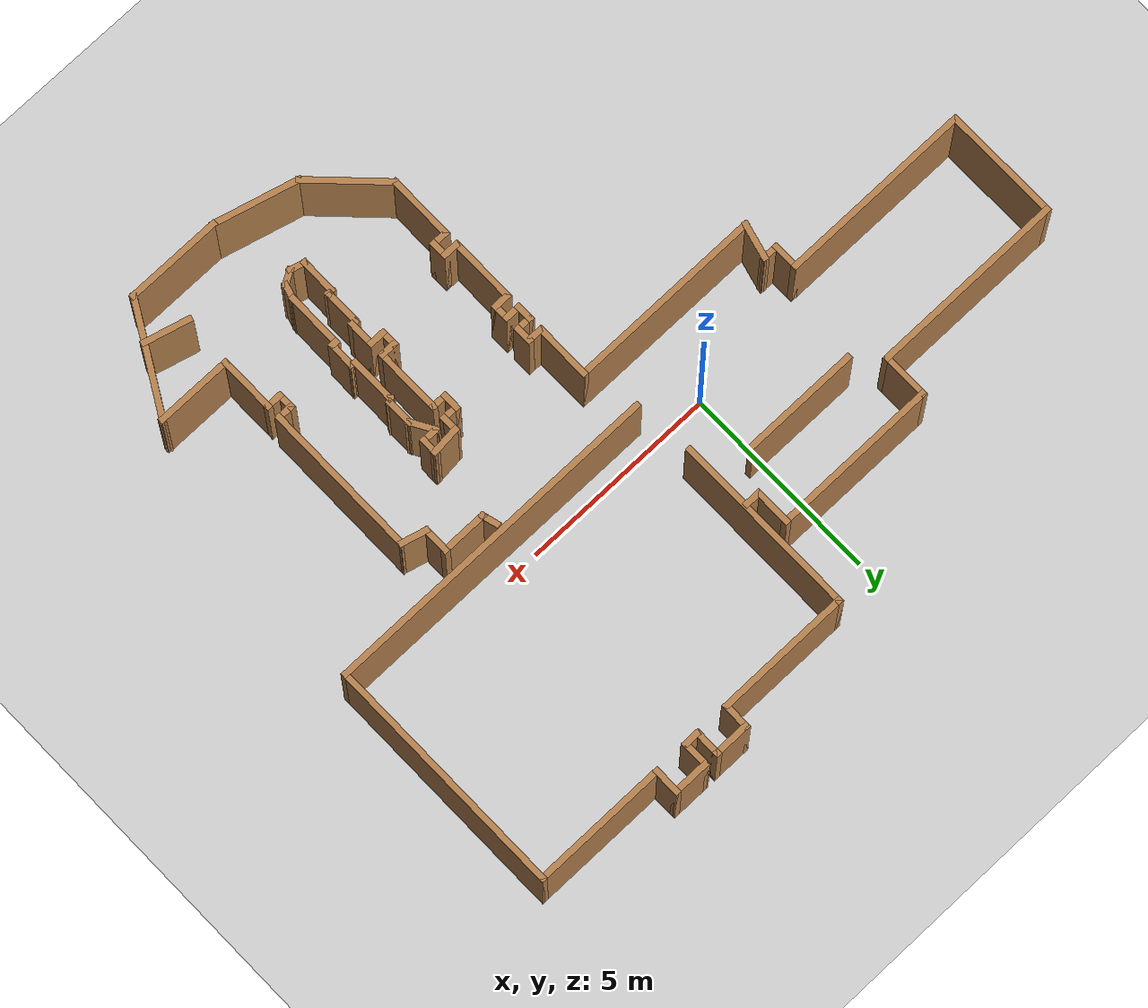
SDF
<sdf version="1.6">
 <world name="default">
  <model name="ground_plane">
   <static>1</static>
   <link name="link">
    <collision name="collision">
     <geometry><plane><normal>0 0 1</normal><size>100 100</size></plane></geometry>
     <surface><friction><ode><mu>100</mu><mu2>50</mu2></ode></friction></surface>
    </collision>
    <visual name="visual">
     <cast_shadows>0</cast_shadows>
     <geometry><plane><normal>0 0 1</normal><size>100 100</size></plane></geometry>
     <material>
      <script><uri>file://media/materials/scripts/gazebo.material</uri><name>Gazebo/Grey</name></script>
     </material>
    </visual>
   </link>
  </model>
  <model name="Robita1_1">
   <pose>1.06807 -1.7719 0 0 -0 0</pose>
   <link name="Wall_104">
    <collision name="Wall_104_Collision">
     <geometry><box><size>0.5 0.15 2.5</size></box></geometry>
     <pose>0 0 1.25 0 -0 0</pose>
    </collision>
    <visual name="Wall_104_Visual">
     <pose>0 0 1.25 0 -0 0</pose>
     <geometry><box><size>0.5 0.15 2.5</size></box></geometry>
     <material>
      <script><uri>file://media/materials/scripts/gazebo.material</uri><name>Gazebo/Wood</name></script>
      <ambient>1 1 1 1</ambient>
     </material>
    </visual>
    <pose>3.64941 -1.1749 0 0 0 -1.5708</pose>
   </link>
   <link name="Wall_105">
    <collision name="Wall_105_Collision">
     <geometry><box><size>0.5 0.15 2.5</size></box></geometry>
     <pose>0 0 1.25 0 -0 0</pose>
    </collision>
    <visual name="Wall_105_Visual">
     <pose>0 0 1.25 0 -0 0</pose>
     <geometry><box><size>0.5 0.15 2.5</size></box></geometry>
     <material>
      <script><uri>file://media/materials/scripts/gazebo.material</uri><name>Gazebo/Wood</name></script>
      <ambient>1 1 1 1</ambient>
     </material>
    </visual>
    <pose>3.47441 -1.3499 0 0 -0 3.14159</pose>
   </link>
   <link name="Wall_106">
    <collision name="Wall_106_Collision">
     <geometry><box><size>0.5 0.15 2.5</size></box></geometry>
     <pose>0 0 1.25 0 -0 0</pose>
    </collision>
    <visual name="Wall_106_Visual">
     <pose>0 0 1.25 0 -0 0</pose>
     <geometry><box><size>0.5 0.15 2.5</size></box></geometry>
     <material>
      <script><uri>file://media/materials/scripts/gazebo.material</uri><name>Gazebo/Wood</name></script>
      <ambient>1 1 1 1</ambient>
     </material>
    </visual>
    <pose>3.29941 -1.5249 0 0 0 -1.5708</pose>
   </link>
   <link name="Wall_107">
    <collision name="Wall_107_Collision">
     <geometry><box><size>0.5 0.15 2.5</size></box></geometry>
     <pose>0 0 1.25 0 -0 0</pose>
    </collision>
    <visual name="Wall_107_Visual">
     <pose>0 0 1.25 0 -0 0</pose>
     <geometry><box><size>0.5 0.15 2.5</size></box></geometry>
     <material>
      <script><uri>file://media/materials/scripts/gazebo.material</uri><name>Gazebo/Wood</name></script>
      <ambient>1 1 1 1</ambient>
     </material>
    </visual>
    <pose>3.47441 -1.6999 0 0 -0 0</pose>
   </link>
   <link name="Wall_108">
    <collision name="Wall_108_Collision">
     <geometry><box><size>1.75 0.15 2.5</size></box></geometry>
     <pose>0 0 1.25 0 -0 0</pose>
    </collision>
    <visual name="Wall_108_Visual">
     <pose>0 0 1.25 0 -0 0</pose>
     <geometry><box><size>1.75 0.15 2.5</size></box></geometry>
     <material>
      <script><uri>file://media/materials/scripts/gazebo.material</uri><name>Gazebo/Wood</name></script>
      <ambient>1 1 1 1</ambient>
     </material>
    </visual>
    <pose>3.64941 -2.4999 0 0 0 -1.5708</pose>
   </link>
   <link name="Wall_112">
    <collision name="Wall_112_Collision">
     <geometry><box><size>0.5 0.15 2.5</size></box></geometry>
     <pose>0 0 1.25 0 -0 0</pose>
    </collision>
    <visual name="Wall_112_Visual">
     <pose>0 0 1.25 0 -0 0</pose>
     <geometry><box><size>0.5 0.15 2.5</size></box></geometry>
     <material>
      <script><uri>file://media/materials/scripts/gazebo.material</uri><name>Gazebo/Wood</name></script>
      <ambient>1 1 1 1</ambient>
     </material>
    </visual>
    <pose>3.47441 -3.2999 0 0 -0 3.14159</pose>
   </link>
   <link name="Wall_113">
    <collision name="Wall_113_Collision">
     <geometry><box><size>0.5 0.15 2.5</size></box></geometry>
     <pose>0 0 1.25 0 -0 0</pose>
    </collision>
    <visual name="Wall_113_Visual">
     <pose>0 0 1.25 0 -0 0</pose>
     <geometry><box><size>0.5 0.15 2.5</size></box></geometry>
     <material>
      <script><uri>file://media/materials/scripts/gazebo.material</uri><name>Gazebo/Wood</name></script>
      <ambient>1 1 1 1</ambient>
     </material>
    </visual>
    <pose>3.29941 -3.4749 0 0 0 -1.5708</pose>
   </link>
   <link name="Wall_114">
    <collision name="Wall_114_Collision">
     <geometry><box><size>0.5 0.15 2.5</size></box></geometry>
     <pose>0 0 1.25 0 -0 0</pose>
    </collision>
    <visual name="Wall_114_Visual">
     <pose>0 0 1.25 0 -0 0</pose>
     <geometry><box><size>0.5 0.15 2.5</size></box></geometry>
     <material>
      <script><uri>file://media/materials/scripts/gazebo.material</uri><name>Gazebo/Wood</name></script>
      <ambient>1 1 1 1</ambient>
     </material>
    </visual>
    <pose>3.47441 -3.6499 0 0 -0 0</pose>
   </link>
   <link name="Wall_115">
    <collision name="Wall_115_Collision">
     <geometry><box><size>0.75 0.15 2.5</size></box></geometry>
     <pose>0 0 1.25 0 -0 0</pose>
    </collision>
    <visual name="Wall_115_Visual">
     <pose>0 0 1.25 0 -0 0</pose>
     <geometry><box><size>0.75 0.15 2.5</size></box></geometry>
     <material>
      <script><uri>file://media/materials/scripts/gazebo.material</uri><name>Gazebo/Wood</name></script>
      <ambient>1 1 1 1</ambient>
     </material>
    </visual>
    <pose>3.64941 -3.9499 0 0 0 -1.5708</pose>
   </link>
   <link name="Wall_116">
    <collision name="Wall_116_Collision">
     <geometry><box><size>0.25 0.15 2.5</size></box></geometry>
     <pose>0 0 1.25 0 -0 0</pose>
    </collision>
    <visual name="Wall_116_Visual">
     <pose>0 0 1.25 0 -0 0</pose>
     <geometry><box><size>0.25 0.15 2.5</size></box></geometry>
     <material>
      <script><uri>file://media/materials/scripts/gazebo.material</uri><name>Gazebo/Wood</name></script>
      <ambient>1 1 1 1</ambient>
     </material>
    </visual>
    <pose>3.59941 -4.2499 0 0 -0 3.14159</pose>
   </link>
   <link name="Wall_117">
    <collision name="Wall_117_Collision">
     <geometry><box><size>1 0.15 2.5</size></box></geometry>
     <pose>0 0 1.25 0 -0 0</pose>
    </collision>
    <visual name="Wall_117_Visual">
     <pose>0 0 1.25 0 -0 0</pose>
     <geometry><box><size>1 0.15 2.5</size></box></geometry>
     <material>
      <script><uri>file://media/materials/scripts/gazebo.material</uri><name>Gazebo/Wood</name></script>
      <ambient>1 1 1 1</ambient>
     </material>
    </visual>
    <pose>3.54941 -4.6749 0 0 0 -1.5708</pose>
   </link>
   <link name="Wall_118">
    <collision name="Wall_118_Collision">
     <geometry><box><size>0.25 0.15 2.5</size></box></geometry>
     <pose>0 0 1.25 0 -0 0</pose>
    </collision>
    <visual name="Wall_118_Visual">
     <pose>0 0 1.25 0 -0 0</pose>
     <geometry><box><size>0.25 0.15 2.5</size></box></geometry>
     <material>
      <script><uri>file://media/materials/scripts/gazebo.material</uri><name>Gazebo/Wood</name></script>
      <ambient>1 1 1 1</ambient>
     </material>
    </visual>
    <pose>3.50111 -5.11284 0 0 0 -2.87979</pose>
   </link>
   <link name="Wall_119">
    <collision name="Wall_119_Collision">
     <geometry><box><size>1 0.15 2.5</size></box></geometry>
     <pose>0 0 1.25 0 -0 0</pose>
    </collision>
    <visual name="Wall_119_Visual">
     <pose>0 0 1.25 0 -0 0</pose>
     <geometry><box><size>1 0.15 2.5</size></box></geometry>
     <material>
      <script><uri>file://media/materials/scripts/gazebo.material</uri><name>Gazebo/Wood</name></script>
      <ambient>1 1 1 1</ambient>
     </material>
    </visual>
    <pose>3.45282 -5.55078 0 0 0 -1.5708</pose>
   </link>
   <link name="Wall_121">
    <collision name="Wall_121_Collision">
     <geometry><box><size>0.5 0.15 2.5</size></box></geometry>
     <pose>0 0 1.25 0 -0 0</pose>
    </collision>
    <visual name="Wall_121_Visual">
     <pose>0 0 1.25 0 -0 0</pose>
     <geometry><box><size>0.5 0.15 2.5</size></box></geometry>
     <material>
      <script><uri>file://media/materials/scripts/gazebo.material</uri><name>Gazebo/Wood</name></script>
      <ambient>1 1 1 1</ambient>
     </material>
    </visual>
    <pose>3.62186 -6.02107 0 0 0 -0.261799</pose>
   </link>
   <link name="Wall_122">
    <collision name="Wall_122_Collision">
     <geometry><box><size>0.5 0.15 2.5</size></box></geometry>
     <pose>0 0 1.25 0 -0 0</pose>
    </collision>
    <visual name="Wall_122_Visual">
     <pose>0 0 1.25 0 -0 0</pose>
     <geometry><box><size>0.5 0.15 2.5</size></box></geometry>
     <material>
      <script><uri>file://media/materials/scripts/gazebo.material</uri><name>Gazebo/Wood</name></script>
      <ambient>1 1 1 1</ambient>
     </material>
    </visual>
    <pose>3.94245 -5.97887 0 0 -0 0.523599</pose>
   </link>
   <link name="Wall_123">
    <collision name="Wall_123_Collision">
     <geometry><box><size>0.5 0.15 2.5</size></box></geometry>
     <pose>0 0 1.25 0 -0 0</pose>
    </collision>
    <visual name="Wall_123_Visual">
     <pose>0 0 1.25 0 -0 0</pose>
     <geometry><box><size>0.5 0.15 2.5</size></box></geometry>
     <material>
      <script><uri>file://media/materials/scripts/gazebo.material</uri><name>Gazebo/Wood</name></script>
      <ambient>1 1 1 1</ambient>
     </material>
    </visual>
    <pose>4.13929 -5.72233 0 0 -0 1.309</pose>
   </link>
   <link name="Wall_126">
    <collision name="Wall_126_Collision">
     <geometry><box><size>1.5 0.15 2.5</size></box></geometry>
     <pose>0 0 1.25 0 -0 0</pose>
    </collision>
    <visual name="Wall_126_Visual">
     <pose>0 0 1.25 0 -0 0</pose>
     <geometry><box><size>1.5 0.15 2.5</size></box></geometry>
     <material>
      <script><uri>file://media/materials/scripts/gazebo.material</uri><name>Gazebo/Wood</name></script>
      <ambient>1 1 1 1</ambient>
     </material>
    </visual>
    <pose>4.18459 -4.87829 0 0 -0 1.5708</pose>
   </link>
   <link name="Wall_127">
    <collision name="Wall_127_Collision">
     <geometry><box><size>0.25 0.15 2.5</size></box></geometry>
     <pose>0 0 1.25 0 -0 0</pose>
    </collision>
    <visual name="Wall_127_Visual">
     <pose>0 0 1.25 0 -0 0</pose>
     <geometry><box><size>0.25 0.15 2.5</size></box></geometry>
     <material>
      <script><uri>file://media/materials/scripts/gazebo.material</uri><name>Gazebo/Wood</name></script>
      <ambient>1 1 1 1</ambient>
     </material>
    </visual>
    <pose>4.23459 -4.20329 0 0 -0 0</pose>
   </link>
   <link name="Wall_128">
    <collision name="Wall_128_Collision">
     <geometry><box><size>0.75 0.15 2.5</size></box></geometry>
     <pose>0 0 1.25 0 -0 0</pose>
    </collision>
    <visual name="Wall_128_Visual">
     <pose>0 0 1.25 0 -0 0</pose>
     <geometry><box><size>0.75 0.15 2.5</size></box></geometry>
     <material>
      <script><uri>file://media/materials/scripts/gazebo.material</uri><name>Gazebo/Wood</name></script>
      <ambient>1 1 1 1</ambient>
     </material>
    </visual>
    <pose>4.28459 -3.90329 0 0 -0 1.5708</pose>
   </link>
   <link name="Wall_129">
    <collision name="Wall_129_Collision">
     <geometry><box><size>0.25 0.15 2.5</size></box></geometry>
     <pose>0 0 1.25 0 -0 0</pose>
    </collision>
    <visual name="Wall_129_Visual">
     <pose>0 0 1.25 0 -0 0</pose>
     <geometry><box><size>0.25 0.15 2.5</size></box></geometry>
     <material>
      <script><uri>file://media/materials/scripts/gazebo.material</uri><name>Gazebo/Wood</name></script>
      <ambient>1 1 1 1</ambient>
     </material>
    </visual>
    <pose>4.23629 -3.59035 0 0 -0 2.87979</pose>
   </link>
   <link name="Wall_130">
    <collision name="Wall_130_Collision">
     <geometry><box><size>1.25 0.15 2.5</size></box></geometry>
     <pose>0 0 1.25 0 -0 0</pose>
    </collision>
    <visual name="Wall_130_Visual">
     <pose>0 0 1.25 0 -0 0</pose>
     <geometry><box><size>1.25 0.15 2.5</size></box></geometry>
     <material>
      <script><uri>file://media/materials/scripts/gazebo.material</uri><name>Gazebo/Wood</name></script>
      <ambient>1 1 1 1</ambient>
     </material>
    </visual>
    <pose>4.18799 -3.02741 0 0 -0 1.5708</pose>
   </link>
   <link name="Wall_131">
    <collision name="Wall_131_Collision">
     <geometry><box><size>0.25 0.15 2.5</size></box></geometry>
     <pose>0 0 1.25 0 -0 0</pose>
    </collision>
    <visual name="Wall_131_Visual">
     <pose>0 0 1.25 0 -0 0</pose>
     <geometry><box><size>0.25 0.15 2.5</size></box></geometry>
     <material>
      <script><uri>file://media/materials/scripts/gazebo.material</uri><name>Gazebo/Wood</name></script>
      <ambient>1 1 1 1</ambient>
     </material>
    </visual>
    <pose>4.22335 -2.44205 0 0 -0 0.785398</pose>
   </link>
   <link name="Wall_132">
    <collision name="Wall_132_Collision">
     <geometry><box><size>0.75 0.15 2.5</size></box></geometry>
     <pose>0 0 1.25 0 -0 0</pose>
    </collision>
    <visual name="Wall_132_Visual">
     <pose>0 0 1.25 0 -0 0</pose>
     <geometry><box><size>0.75 0.15 2.5</size></box></geometry>
     <material>
      <script><uri>file://media/materials/scripts/gazebo.material</uri><name>Gazebo/Wood</name></script>
      <ambient>1 1 1 1</ambient>
     </material>
    </visual>
    <pose>4.2587 -2.1067 0 0 -0 1.5708</pose>
   </link>
   <link name="Wall_135">
    <collision name="Wall_135_Collision">
     <geometry><box><size>0.75 0.15 2.5</size></box></geometry>
     <pose>0 0 1.25 0 -0 0</pose>
    </collision>
    <visual name="Wall_135_Visual">
     <pose>0 0 1.25 0 -0 0</pose>
     <geometry><box><size>0.75 0.15 2.5</size></box></geometry>
     <material>
      <script><uri>file://media/materials/scripts/gazebo.material</uri><name>Gazebo/Wood</name></script>
      <ambient>1 1 1 1</ambient>
     </material>
    </visual>
    <pose>4.1087 -1.54689 0 0 -0 2.0944</pose>
   </link>
   <link name="Wall_136">
    <collision name="Wall_136_Collision">
     <geometry><box><size>0.5 0.15 2.5</size></box></geometry>
     <pose>0 0 1.25 0 -0 0</pose>
    </collision>
    <visual name="Wall_136_Visual">
     <pose>0 0 1.25 0 -0 0</pose>
     <geometry><box><size>0.5 0.15 2.5</size></box></geometry>
     <material>
      <script><uri>file://media/materials/scripts/gazebo.material</uri><name>Gazebo/Wood</name></script>
      <ambient>1 1 1 1</ambient>
     </material>
    </visual>
    <pose>4.13393 -1.28713 0 0 0 -0.000242</pose>
   </link>
   <link name="Wall_137">
    <collision name="Wall_137_Collision">
     <geometry><box><size>0.5 0.15 2.5</size></box></geometry>
     <pose>0 0 1.25 0 -0 0</pose>
    </collision>
    <visual name="Wall_137_Visual">
     <pose>0 0 1.25 0 -0 0</pose>
     <geometry><box><size>0.5 0.15 2.5</size></box></geometry>
     <material>
      <script><uri>file://media/materials/scripts/gazebo.material</uri><name>Gazebo/Wood</name></script>
      <ambient>1 1 1 1</ambient>
     </material>
    </visual>
    <pose>4.30916 -1.11217 0 0 -0 1.5708</pose>
   </link>
   <link name="Wall_138">
    <collision name="Wall_138_Collision">
     <geometry><box><size>0.812281 0.15 2.5</size></box></geometry>
     <pose>0 0 1.25 0 -0 0</pose>
    </collision>
    <visual name="Wall_138_Visual">
     <pose>0 0 1.25 0 -0 0</pose>
     <geometry><box><size>0.812281 0.15 2.5</size></box></geometry>
     <material>
      <script><uri>file://media/materials/scripts/gazebo.material</uri><name>Gazebo/Wood</name></script>
      <ambient>1 1 1 1</ambient>
     </material>
    </visual>
    <pose>3.97928 -0.968534 0 0 0 -3.0468</pose>
   </link>
   <link name="Wall_140">
    <collision name="Wall_140_Collision">
     <geometry><box><size>1.25 0.15 2.5</size></box></geometry>
     <pose>0 0 1.25 0 -0 0</pose>
    </collision>
    <visual name="Wall_140_Visual">
     <pose>0 0 1.25 0 -0 0</pose>
     <geometry><box><size>1.25 0.15 2.5</size></box></geometry>
     <material>
      <script><uri>file://media/materials/scripts/gazebo.material</uri><name>Gazebo/Wood</name></script>
      <ambient>1 1 1 1</ambient>
     </material>
    </visual>
    <pose>6.66221 -6.90662 0 0 0 -0.261799</pose>
   </link>
   <link name="Wall_16">
    <collision name="Wall_16_Collision">
     <geometry><box><size>0.75 0.15 2.5</size></box></geometry>
     <pose>0 0 1.25 0 -0 0</pose>
    </collision>
    <visual name="Wall_16_Visual">
     <pose>0 0 1.25 0 -0 0</pose>
     <geometry><box><size>0.75 0.15 2.5</size></box></geometry>
     <material>
      <script><uri>file://media/materials/scripts/gazebo.material</uri><name>Gazebo/Wood</name></script>
      <ambient>1 1 1 1</ambient>
     </material>
    </visual>
    <pose>-4.20078 1.12035 0 0 0 -1.5708</pose>
   </link>
   <link name="Wall_17">
    <collision name="Wall_17_Collision">
     <geometry><box><size>0.5 0.15 2.5</size></box></geometry>
     <pose>0 0 1.25 0 -0 0</pose>
    </collision>
    <visual name="Wall_17_Visual">
     <pose>0 0 1.25 0 -0 0</pose>
     <geometry><box><size>0.5 0.15 2.5</size></box></geometry>
     <material>
      <script><uri>file://media/materials/scripts/gazebo.material</uri><name>Gazebo/Wood</name></script>
      <ambient>1 1 1 1</ambient>
     </material>
    </visual>
    <pose>-4.02578 0.820348 0 0 -0 0</pose>
   </link>
   <link name="Wall_18">
    <collision name="Wall_18_Collision">
     <geometry><box><size>1 0.15 2.5</size></box></geometry>
     <pose>0 0 1.25 0 -0 0</pose>
    </collision>
    <visual name="Wall_18_Visual">
     <pose>0 0 1.25 0 -0 0</pose>
     <geometry><box><size>1 0.15 2.5</size></box></geometry>
     <material>
      <script><uri>file://media/materials/scripts/gazebo.material</uri><name>Gazebo/Wood</name></script>
      <ambient>1 1 1 1</ambient>
     </material>
    </visual>
    <pose>-3.96077 0.409829 0 0 0 -1.8326</pose>
   </link>
   <link name="Wall_19">
    <collision name="Wall_19_Collision">
     <geometry><box><size>5 0.15 2.5</size></box></geometry>
     <pose>0 0 1.25 0 -0 0</pose>
    </collision>
    <visual name="Wall_19_Visual">
     <pose>0 0 1.25 0 -0 0</pose>
     <geometry><box><size>5 0.15 2.5</size></box></geometry>
     <material>
      <script><uri>file://media/materials/scripts/gazebo.material</uri><name>Gazebo/Wood</name></script>
      <ambient>1 1 1 1</ambient>
     </material>
    </visual>
    <pose>-1.64577 -0.000689 0 0 -0 0</pose>
   </link>
   <link name="Wall_20">
    <collision name="Wall_20_Collision">
     <geometry><box><size>1.5 0.15 2.5</size></box></geometry>
     <pose>0 0 1.25 0 -0 0</pose>
    </collision>
    <visual name="Wall_20_Visual">
     <pose>0 0 1.25 0 -0 0</pose>
     <geometry><box><size>1.5 0.15 2.5</size></box></geometry>
     <material>
      <script><uri>file://media/materials/scripts/gazebo.material</uri><name>Gazebo/Wood</name></script>
      <ambient>1 1 1 1</ambient>
     </material>
    </visual>
    <pose>0.779229 -0.675689 0 0 0 -1.5708</pose>
   </link>
   <link name="Wall_21">
    <collision name="Wall_21_Collision">
     <geometry><box><size>0.5 0.15 2.5</size></box></geometry>
     <pose>0 0 1.25 0 -0 0</pose>
    </collision>
    <visual name="Wall_21_Visual">
     <pose>0 0 1.25 0 -0 0</pose>
     <geometry><box><size>0.5 0.15 2.5</size></box></geometry>
     <material>
      <script><uri>file://media/materials/scripts/gazebo.material</uri><name>Gazebo/Wood</name></script>
      <ambient>1 1 1 1</ambient>
     </material>
    </visual>
    <pose>0.954229 -1.35069 0 0 -0 0</pose>
   </link>
   <link name="Wall_22">
    <collision name="Wall_22_Collision">
     <geometry><box><size>0.5 0.15 2.5</size></box></geometry>
     <pose>0 0 1.25 0 -0 0</pose>
    </collision>
    <visual name="Wall_22_Visual">
     <pose>0 0 1.25 0 -0 0</pose>
     <geometry><box><size>0.5 0.15 2.5</size></box></geometry>
     <material>
      <script><uri>file://media/materials/scripts/gazebo.material</uri><name>Gazebo/Wood</name></script>
      <ambient>1 1 1 1</ambient>
     </material>
    </visual>
    <pose>1.12923 -1.52569 0 0 0 -1.5708</pose>
   </link>
   <link name="Wall_25">
    <collision name="Wall_25_Collision">
     <geometry><box><size>0.5 0.15 2.5</size></box></geometry>
     <pose>0 0 1.25 0 -0 0</pose>
    </collision>
    <visual name="Wall_25_Visual">
     <pose>0 0 1.25 0 -0 0</pose>
     <geometry><box><size>0.5 0.15 2.5</size></box></geometry>
     <material>
      <script><uri>file://media/materials/scripts/gazebo.material</uri><name>Gazebo/Wood</name></script>
      <ambient>1 1 1 1</ambient>
     </material>
    </visual>
    <pose>0.954229 -1.70069 0 0 -0 3.14159</pose>
   </link>
   <link name="Wall_26">
    <collision name="Wall_26_Collision">
     <geometry><box><size>0.5 0.15 2.5</size></box></geometry>
     <pose>0 0 1.25 0 -0 0</pose>
    </collision>
    <visual name="Wall_26_Visual">
     <pose>0 0 1.25 0 -0 0</pose>
     <geometry><box><size>0.5 0.15 2.5</size></box></geometry>
     <material>
      <script><uri>file://media/materials/scripts/gazebo.material</uri><name>Gazebo/Wood</name></script>
      <ambient>1 1 1 1</ambient>
     </material>
    </visual>
    <pose>0.779229 -1.87569 0 0 0 -1.5708</pose>
   </link>
   <link name="Wall_27">
    <collision name="Wall_27_Collision">
     <geometry><box><size>0.5 0.15 2.5</size></box></geometry>
     <pose>0 0 1.25 0 -0 0</pose>
    </collision>
    <visual name="Wall_27_Visual">
     <pose>0 0 1.25 0 -0 0</pose>
     <geometry><box><size>0.5 0.15 2.5</size></box></geometry>
     <material>
      <script><uri>file://media/materials/scripts/gazebo.material</uri><name>Gazebo/Wood</name></script>
      <ambient>1 1 1 1</ambient>
     </material>
    </visual>
    <pose>0.954229 -2.05069 0 0 -0 0</pose>
   </link>
   <link name="Wall_28">
    <collision name="Wall_28_Collision">
     <geometry><box><size>0.5 0.15 2.5</size></box></geometry>
     <pose>0 0 1.25 0 -0 0</pose>
    </collision>
    <visual name="Wall_28_Visual">
     <pose>0 0 1.25 0 -0 0</pose>
     <geometry><box><size>0.5 0.15 2.5</size></box></geometry>
     <material>
      <script><uri>file://media/materials/scripts/gazebo.material</uri><name>Gazebo/Wood</name></script>
      <ambient>1 1 1 1</ambient>
     </material>
    </visual>
    <pose>1.12923 -2.22569 0 0 0 -1.5708</pose>
   </link>
   <link name="Wall_29">
    <collision name="Wall_29_Collision">
     <geometry><box><size>0.5 0.15 2.5</size></box></geometry>
     <pose>0 0 1.25 0 -0 0</pose>
    </collision>
    <visual name="Wall_29_Visual">
     <pose>0 0 1.25 0 -0 0</pose>
     <geometry><box><size>0.5 0.15 2.5</size></box></geometry>
     <material>
      <script><uri>file://media/materials/scripts/gazebo.material</uri><name>Gazebo/Wood</name></script>
      <ambient>1 1 1 1</ambient>
     </material>
    </visual>
    <pose>0.954229 -2.40069 0 0 -0 3.14159</pose>
   </link>
   <link name="Wall_3">
    <collision name="Wall_3_Collision">
     <geometry><box><size>3 0.15 2.5</size></box></geometry>
     <pose>0 0 1.25 0 -0 0</pose>
    </collision>
    <visual name="Wall_3_Visual">
     <pose>0 0 1.25 0 -0 0</pose>
     <geometry><box><size>3 0.15 2.5</size></box></geometry>
     <material>
      <script><uri>file://media/materials/scripts/gazebo.material</uri><name>Gazebo/Wood</name></script>
      <ambient>1 1 1 1</ambient>
     </material>
    </visual>
    <pose>-9.05077 2.84535 0 0 0 -1.5708</pose>
   </link>
   <link name="Wall_31">
    <collision name="Wall_31_Collision">
     <geometry><box><size>1.75 0.15 2.5</size></box></geometry>
     <pose>0 0 1.25 0 -0 0</pose>
    </collision>
    <visual name="Wall_31_Visual">
     <pose>0 0 1.25 0 -0 0</pose>
     <geometry><box><size>1.75 0.15 2.5</size></box></geometry>
     <material>
      <script><uri>file://media/materials/scripts/gazebo.material</uri><name>Gazebo/Wood</name></script>
      <ambient>1 1 1 1</ambient>
     </material>
    </visual>
    <pose>0.779229 -3.20069 0 0 0 -1.5708</pose>
   </link>
   <link name="Wall_32">
    <collision name="Wall_32_Collision">
     <geometry><box><size>0.5 0.15 2.5</size></box></geometry>
     <pose>0 0 1.25 0 -0 0</pose>
    </collision>
    <visual name="Wall_32_Visual">
     <pose>0 0 1.25 0 -0 0</pose>
     <geometry><box><size>0.5 0.15 2.5</size></box></geometry>
     <material>
      <script><uri>file://media/materials/scripts/gazebo.material</uri><name>Gazebo/Wood</name></script>
      <ambient>1 1 1 1</ambient>
     </material>
    </visual>
    <pose>0.954229 -4.00069 0 0 -0 0</pose>
   </link>
   <link name="Wall_35">
    <collision name="Wall_35_Collision">
     <geometry><box><size>0.5 0.15 2.5</size></box></geometry>
     <pose>0 0 1.25 0 -0 0</pose>
    </collision>
    <visual name="Wall_35_Visual">
     <pose>0 0 1.25 0 -0 0</pose>
     <geometry><box><size>0.5 0.15 2.5</size></box></geometry>
     <material>
      <script><uri>file://media/materials/scripts/gazebo.material</uri><name>Gazebo/Wood</name></script>
      <ambient>1 1 1 1</ambient>
     </material>
    </visual>
    <pose>1.12923 -4.17569 0 0 0 -1.5708</pose>
   </link>
   <link name="Wall_38">
    <collision name="Wall_38_Collision">
     <geometry><box><size>0.5 0.15 2.5</size></box></geometry>
     <pose>0 0 1.25 0 -0 0</pose>
    </collision>
    <visual name="Wall_38_Visual">
     <pose>0 0 1.25 0 -0 0</pose>
     <geometry><box><size>0.5 0.15 2.5</size></box></geometry>
     <material>
      <script><uri>file://media/materials/scripts/gazebo.material</uri><name>Gazebo/Wood</name></script>
      <ambient>1 1 1 1</ambient>
     </material>
    </visual>
    <pose>0.954229 -4.35069 0 0 -0 3.14159</pose>
   </link>
   <link name="Wall_39">
    <collision name="Wall_39_Collision">
     <geometry><box><size>1.75 0.15 2.5</size></box></geometry>
     <pose>0 0 1.25 0 -0 0</pose>
    </collision>
    <visual name="Wall_39_Visual">
     <pose>0 0 1.25 0 -0 0</pose>
     <geometry><box><size>1.75 0.15 2.5</size></box></geometry>
     <material>
      <script><uri>file://media/materials/scripts/gazebo.material</uri><name>Gazebo/Wood</name></script>
      <ambient>1 1 1 1</ambient>
     </material>
    </visual>
    <pose>0.779229 -5.15069 0 0 0 -1.5708</pose>
   </link>
   <link name="Wall_4">
    <collision name="Wall_4_Collision">
     <geometry><box><size>5 0.15 2.5</size></box></geometry>
     <pose>0 0 1.25 0 -0 0</pose>
    </collision>
    <visual name="Wall_4_Visual">
     <pose>0 0 1.25 0 -0 0</pose>
     <geometry><box><size>5 0.15 2.5</size></box></geometry>
     <material>
      <script><uri>file://media/materials/scripts/gazebo.material</uri><name>Gazebo/Wood</name></script>
      <ambient>1 1 1 1</ambient>
     </material>
    </visual>
    <pose>-6.62577 1.42035 0 0 -0 0</pose>
   </link>
   <link name="Wall_41">
    <collision name="Wall_41_Collision">
     <geometry><box><size>2.25 0.15 2.5</size></box></geometry>
     <pose>0 0 1.25 0 -0 0</pose>
    </collision>
    <visual name="Wall_41_Visual">
     <pose>0 0 1.25 0 -0 0</pose>
     <geometry><box><size>2.25 0.15 2.5</size></box></geometry>
     <material>
      <script><uri>file://media/materials/scripts/gazebo.material</uri><name>Gazebo/Wood</name></script>
      <ambient>1 1 1 1</ambient>
     </material>
    </visual>
    <pose>1.52169 -6.69315 0 0 0 -0.785398</pose>
   </link>
   <link name="Wall_42">
    <collision name="Wall_42_Collision">
     <geometry><box><size>2.25 0.15 2.5</size></box></geometry>
     <pose>0 0 1.25 0 -0 0</pose>
    </collision>
    <visual name="Wall_42_Visual">
     <pose>0 0 1.25 0 -0 0</pose>
     <geometry><box><size>2.25 0.15 2.5</size></box></geometry>
     <material>
      <script><uri>file://media/materials/scripts/gazebo.material</uri><name>Gazebo/Wood</name></script>
      <ambient>1 1 1 1</ambient>
     </material>
    </visual>
    <pose>3.27838 -7.70737 0 0 0 -0.261799</pose>
   </link>
   <link name="Wall_43">
    <collision name="Wall_43_Collision">
     <geometry><box><size>2.5 0.15 2.5</size></box></geometry>
     <pose>0 0 1.25 0 -0 0</pose>
    </collision>
    <visual name="Wall_43_Visual">
     <pose>0 0 1.25 0 -0 0</pose>
     <geometry><box><size>2.5 0.15 2.5</size></box></geometry>
     <material>
      <script><uri>file://media/materials/scripts/gazebo.material</uri><name>Gazebo/Wood</name></script>
      <ambient>1 1 1 1</ambient>
     </material>
    </visual>
    <pose>5.4676 -7.97913 0 0 -0 0</pose>
   </link>
   <link name="Wall_44">
    <collision name="Wall_44_Collision">
     <geometry><box><size>3 0.15 2.5</size></box></geometry>
     <pose>0 0 1.25 0 -0 0</pose>
    </collision>
    <visual name="Wall_44_Visual">
     <pose>0 0 1.25 0 -0 0</pose>
     <geometry><box><size>3 0.15 2.5</size></box></geometry>
     <material>
      <script><uri>file://media/materials/scripts/gazebo.material</uri><name>Gazebo/Wood</name></script>
      <ambient>1 1 1 1</ambient>
     </material>
    </visual>
    <pose>7.3551 -6.74505 0 0 -0 1.0472</pose>
   </link>
   <link name="Wall_47">
    <collision name="Wall_47_Collision">
     <geometry><box><size>2 0.15 2.5</size></box></geometry>
     <pose>0 0 1.25 0 -0 0</pose>
    </collision>
    <visual name="Wall_47_Visual">
     <pose>0 0 1.25 0 -0 0</pose>
     <geometry><box><size>2 0.15 2.5</size></box></geometry>
     <material>
      <script><uri>file://media/materials/scripts/gazebo.material</uri><name>Gazebo/Wood</name></script>
      <ambient>1 1 1 1</ambient>
     </material>
    </visual>
    <pose>7.1426 -5.51096 0 0 -0 3.14159</pose>
   </link>
   <link name="Wall_48">
    <collision name="Wall_48_Collision">
     <geometry><box><size>1.5 0.15 2.5</size></box></geometry>
     <pose>0 0 1.25 0 -0 0</pose>
    </collision>
    <visual name="Wall_48_Visual">
     <pose>0 0 1.25 0 -0 0</pose>
     <geometry><box><size>1.5 0.15 2.5</size></box></geometry>
     <material>
      <script><uri>file://media/materials/scripts/gazebo.material</uri><name>Gazebo/Wood</name></script>
      <ambient>1 1 1 1</ambient>
     </material>
    </visual>
    <pose>6.2176 -4.83596 0 0 -0 1.5708</pose>
   </link>
   <link name="Wall_49">
    <collision name="Wall_49_Collision">
     <geometry><box><size>0.5 0.15 2.5</size></box></geometry>
     <pose>0 0 1.25 0 -0 0</pose>
    </collision>
    <visual name="Wall_49_Visual">
     <pose>0 0 1.25 0 -0 0</pose>
     <geometry><box><size>0.5 0.15 2.5</size></box></geometry>
     <material>
      <script><uri>file://media/materials/scripts/gazebo.material</uri><name>Gazebo/Wood</name></script>
      <ambient>1 1 1 1</ambient>
     </material>
    </visual>
    <pose>6.0426 -4.16096 0 0 -0 3.14159</pose>
   </link>
   <link name="Wall_50">
    <collision name="Wall_50_Collision">
     <geometry><box><size>0.5 0.15 2.5</size></box></geometry>
     <pose>0 0 1.25 0 -0 0</pose>
    </collision>
    <visual name="Wall_50_Visual">
     <pose>0 0 1.25 0 -0 0</pose>
     <geometry><box><size>0.5 0.15 2.5</size></box></geometry>
     <material>
      <script><uri>file://media/materials/scripts/gazebo.material</uri><name>Gazebo/Wood</name></script>
      <ambient>1 1 1 1</ambient>
     </material>
    </visual>
    <pose>5.8676 -3.98596 0 0 -0 1.5708</pose>
   </link>
   <link name="Wall_51">
    <collision name="Wall_51_Collision">
     <geometry><box><size>0.5 0.15 2.5</size></box></geometry>
     <pose>0 0 1.25 0 -0 0</pose>
    </collision>
    <visual name="Wall_51_Visual">
     <pose>0 0 1.25 0 -0 0</pose>
     <geometry><box><size>0.5 0.15 2.5</size></box></geometry>
     <material>
      <script><uri>file://media/materials/scripts/gazebo.material</uri><name>Gazebo/Wood</name></script>
      <ambient>1 1 1 1</ambient>
     </material>
    </visual>
    <pose>6.0426 -3.81096 0 0 -0 0</pose>
   </link>
   <link name="Wall_52">
    <collision name="Wall_52_Collision">
     <geometry><box><size>4 0.15 2.5</size></box></geometry>
     <pose>0 0 1.25 0 -0 0</pose>
    </collision>
    <visual name="Wall_52_Visual">
     <pose>0 0 1.25 0 -0 0</pose>
     <geometry><box><size>4 0.15 2.5</size></box></geometry>
     <material>
      <script><uri>file://media/materials/scripts/gazebo.material</uri><name>Gazebo/Wood</name></script>
      <ambient>1 1 1 1</ambient>
     </material>
    </visual>
    <pose>6.2176 -1.88596 0 0 -0 1.5708</pose>
   </link>
   <link name="Wall_54">
    <collision name="Wall_54_Collision">
     <geometry><box><size>5 0.15 2.5</size></box></geometry>
     <pose>0 0 1.25 0 -0 0</pose>
    </collision>
    <visual name="Wall_54_Visual">
     <pose>0 0 1.25 0 -0 0</pose>
     <geometry><box><size>5 0.15 2.5</size></box></geometry>
     <material>
      <script><uri>file://media/materials/scripts/gazebo.material</uri><name>Gazebo/Wood</name></script>
      <ambient>1 1 1 1</ambient>
     </material>
    </visual>
    <pose>-6.62577 4.27035 0 0 -0 0</pose>
   </link>
   <link name="Wall_55">
    <collision name="Wall_55_Collision">
     <geometry><box><size>1.25 0.15 2.5</size></box></geometry>
     <pose>0 0 1.25 0 -0 0</pose>
    </collision>
    <visual name="Wall_55_Visual">
     <pose>0 0 1.25 0 -0 0</pose>
     <geometry><box><size>1.25 0.15 2.5</size></box></geometry>
     <material>
      <script><uri>file://media/materials/scripts/gazebo.material</uri><name>Gazebo/Wood</name></script>
      <ambient>1 1 1 1</ambient>
     </material>
    </visual>
    <pose>-4.20078 4.82035 0 0 -0 1.5708</pose>
   </link>
   <link name="Wall_56">
    <collision name="Wall_56_Collision">
     <geometry><box><size>4.25 0.15 2.5</size></box></geometry>
     <pose>0 0 1.25 0 -0 0</pose>
    </collision>
    <visual name="Wall_56_Visual">
     <pose>0 0 1.25 0 -0 0</pose>
     <geometry><box><size>4.25 0.15 2.5</size></box></geometry>
     <material>
      <script><uri>file://media/materials/scripts/gazebo.material</uri><name>Gazebo/Wood</name></script>
      <ambient>1 1 1 1</ambient>
     </material>
    </visual>
    <pose>-2.15077 5.37035 0 0 -0 0</pose>
   </link>
   <link name="Wall_57">
    <collision name="Wall_57_Collision">
     <geometry><box><size>1 0.15 2.5</size></box></geometry>
     <pose>0 0 1.25 0 -0 0</pose>
    </collision>
    <visual name="Wall_57_Visual">
     <pose>0 0 1.25 0 -0 0</pose>
     <geometry><box><size>1 0.15 2.5</size></box></geometry>
     <material>
      <script><uri>file://media/materials/scripts/gazebo.material</uri><name>Gazebo/Wood</name></script>
      <ambient>1 1 1 1</ambient>
     </material>
    </visual>
    <pose>-0.100775 4.94535 0 0 0 -1.5708</pose>
   </link>
   <link name="Wall_58">
    <collision name="Wall_58_Collision">
     <geometry><box><size>0.5 0.15 2.5</size></box></geometry>
     <pose>0 0 1.25 0 -0 0</pose>
    </collision>
    <visual name="Wall_58_Visual">
     <pose>0 0 1.25 0 -0 0</pose>
     <geometry><box><size>0.5 0.15 2.5</size></box></geometry>
     <material>
      <script><uri>file://media/materials/scripts/gazebo.material</uri><name>Gazebo/Wood</name></script>
      <ambient>1 1 1 1</ambient>
     </material>
    </visual>
    <pose>0.074225 4.52035 0 0 -0 0</pose>
   </link>
   <link name="Wall_60">
    <collision name="Wall_60_Collision">
     <geometry><box><size>4.75 0.15 2.5</size></box></geometry>
     <pose>0 0 1.25 0 -0 0</pose>
    </collision>
    <visual name="Wall_60_Visual">
     <pose>0 0 1.25 0 -0 0</pose>
     <geometry><box><size>4.75 0.15 2.5</size></box></geometry>
     <material>
      <script><uri>file://media/materials/scripts/gazebo.material</uri><name>Gazebo/Wood</name></script>
      <ambient>1 1 1 1</ambient>
     </material>
    </visual>
    <pose>0.300774 5.10659 0 0 -0 1.5708</pose>
   </link>
   <link name="Wall_61">
    <collision name="Wall_61_Collision">
     <geometry><box><size>3.5 0.15 2.5</size></box></geometry>
     <pose>0 0 1.25 0 -0 0</pose>
    </collision>
    <visual name="Wall_61_Visual">
     <pose>0 0 1.25 0 -0 0</pose>
     <geometry><box><size>3.5 0.15 2.5</size></box></geometry>
     <material>
      <script><uri>file://media/materials/scripts/gazebo.material</uri><name>Gazebo/Wood</name></script>
      <ambient>1 1 1 1</ambient>
     </material>
    </visual>
    <pose>1.97577 7.40659 0 0 -0 0</pose>
   </link>
   <link name="Wall_63">
    <collision name="Wall_63_Collision">
     <geometry><box><size>0.75 0.15 2.5</size></box></geometry>
     <pose>0 0 1.25 0 -0 0</pose>
    </collision>
    <visual name="Wall_63_Visual">
     <pose>0 0 1.25 0 -0 0</pose>
     <geometry><box><size>0.75 0.15 2.5</size></box></geometry>
     <material>
      <script><uri>file://media/materials/scripts/gazebo.material</uri><name>Gazebo/Wood</name></script>
      <ambient>1 1 1 1</ambient>
     </material>
    </visual>
    <pose>3.65077 7.70659 0 0 -0 1.5708</pose>
   </link>
   <link name="Wall_64">
    <collision name="Wall_64_Collision">
     <geometry><box><size>1 0.15 2.5</size></box></geometry>
     <pose>0 0 1.25 0 -0 0</pose>
    </collision>
    <visual name="Wall_64_Visual">
     <pose>0 0 1.25 0 -0 0</pose>
     <geometry><box><size>1 0.15 2.5</size></box></geometry>
     <material>
      <script><uri>file://media/materials/scripts/gazebo.material</uri><name>Gazebo/Wood</name></script>
      <ambient>1 1 1 1</ambient>
     </material>
    </visual>
    <pose>4.07577 8.00659 0 0 -0 0</pose>
   </link>
   <link name="Wall_65">
    <collision name="Wall_65_Collision">
     <geometry><box><size>0.75 0.15 2.5</size></box></geometry>
     <pose>0 0 1.25 0 -0 0</pose>
    </collision>
    <visual name="Wall_65_Visual">
     <pose>0 0 1.25 0 -0 0</pose>
     <geometry><box><size>0.75 0.15 2.5</size></box></geometry>
     <material>
      <script><uri>file://media/materials/scripts/gazebo.material</uri><name>Gazebo/Wood</name></script>
      <ambient>1 1 1 1</ambient>
     </material>
    </visual>
    <pose>4.50077 7.70659 0 0 0 -1.5708</pose>
   </link>
   <link name="Wall_66">
    <collision name="Wall_66_Collision">
     <geometry><box><size>0.5 0.15 2.5</size></box></geometry>
     <pose>0 0 1.25 0 -0 0</pose>
    </collision>
    <visual name="Wall_66_Visual">
     <pose>0 0 1.25 0 -0 0</pose>
     <geometry><box><size>0.5 0.15 2.5</size></box></geometry>
     <material>
      <script><uri>file://media/materials/scripts/gazebo.material</uri><name>Gazebo/Wood</name></script>
      <ambient>1 1 1 1</ambient>
     </material>
    </visual>
    <pose>4.67577 7.40659 0 0 -0 0</pose>
   </link>
   <link name="Wall_67">
    <collision name="Wall_67_Collision">
     <geometry><box><size>0.75 0.15 2.5</size></box></geometry>
     <pose>0 0 1.25 0 -0 0</pose>
    </collision>
    <visual name="Wall_67_Visual">
     <pose>0 0 1.25 0 -0 0</pose>
     <geometry><box><size>0.75 0.15 2.5</size></box></geometry>
     <material>
      <script><uri>file://media/materials/scripts/gazebo.material</uri><name>Gazebo/Wood</name></script>
      <ambient>1 1 1 1</ambient>
     </material>
    </visual>
    <pose>4.85077 7.70659 0 0 -0 1.5708</pose>
   </link>
   <link name="Wall_68">
    <collision name="Wall_68_Collision">
     <geometry><box><size>1 0.15 2.5</size></box></geometry>
     <pose>0 0 1.25 0 -0 0</pose>
    </collision>
    <visual name="Wall_68_Visual">
     <pose>0 0 1.25 0 -0 0</pose>
     <geometry><box><size>1 0.15 2.5</size></box></geometry>
     <material>
      <script><uri>file://media/materials/scripts/gazebo.material</uri><name>Gazebo/Wood</name></script>
      <ambient>1 1 1 1</ambient>
     </material>
    </visual>
    <pose>5.27577 8.00659 0 0 -0 0</pose>
   </link>
   <link name="Wall_69">
    <collision name="Wall_69_Collision">
     <geometry><box><size>0.75 0.15 2.5</size></box></geometry>
     <pose>0 0 1.25 0 -0 0</pose>
    </collision>
    <visual name="Wall_69_Visual">
     <pose>0 0 1.25 0 -0 0</pose>
     <geometry><box><size>0.75 0.15 2.5</size></box></geometry>
     <material>
      <script><uri>file://media/materials/scripts/gazebo.material</uri><name>Gazebo/Wood</name></script>
      <ambient>1 1 1 1</ambient>
     </material>
    </visual>
    <pose>5.70077 7.70659 0 0 0 -1.5708</pose>
   </link>
   <link name="Wall_72">
    <collision name="Wall_72_Collision">
     <geometry><box><size>3.5 0.15 2.5</size></box></geometry>
     <pose>0 0 1.25 0 -0 0</pose>
    </collision>
    <visual name="Wall_72_Visual">
     <pose>0 0 1.25 0 -0 0</pose>
     <geometry><box><size>3.5 0.15 2.5</size></box></geometry>
     <material>
      <script><uri>file://media/materials/scripts/gazebo.material</uri><name>Gazebo/Wood</name></script>
      <ambient>1 1 1 1</ambient>
     </material>
    </visual>
    <pose>7.37577 7.40659 0 0 -0 0</pose>
   </link>
   <link name="Wall_83">
    <collision name="Wall_83_Collision">
     <geometry><box><size>6.25 0.15 2.5</size></box></geometry>
     <pose>0 0 1.25 0 -0 0</pose>
    </collision>
    <visual name="Wall_83_Visual">
     <pose>0 0 1.25 0 -0 0</pose>
     <geometry><box><size>6.25 0.15 2.5</size></box></geometry>
     <material>
      <script><uri>file://media/materials/scripts/gazebo.material</uri><name>Gazebo/Wood</name></script>
      <ambient>1 1 1 1</ambient>
     </material>
    </visual>
    <pose>9.05077 4.35659 0 0 0 -1.5708</pose>
   </link>
   <link name="Wall_86">
    <collision name="Wall_86_Collision">
     <geometry><box><size>8.75 0.15 2.5</size></box></geometry>
     <pose>0 0 1.25 0 -0 0</pose>
    </collision>
    <visual name="Wall_86_Visual">
     <pose>0 0 1.25 0 -0 0</pose>
     <geometry><box><size>8.75 0.15 2.5</size></box></geometry>
     <material>
      <script><uri>file://media/materials/scripts/gazebo.material</uri><name>Gazebo/Wood</name></script>
      <ambient>1 1 1 1</ambient>
     </material>
    </visual>
    <pose>4.75077 1.30659 0 0 -0 3.14159</pose>
   </link>
   <link name="Wall_89">
    <collision name="Wall_89_Collision">
     <geometry><box><size>0.75 0.15 2.5</size></box></geometry>
     <pose>0 0 1.25 0 -0 0</pose>
    </collision>
    <visual name="Wall_89_Visual">
     <pose>0 0 1.25 0 -0 0</pose>
     <geometry><box><size>0.75 0.15 2.5</size></box></geometry>
     <material>
      <script><uri>file://media/materials/scripts/gazebo.material</uri><name>Gazebo/Wood</name></script>
      <ambient>1 1 1 1</ambient>
     </material>
    </visual>
    <pose>5.92782 0.116684 0 0 -0 2.87979</pose>
   </link>
   <link name="Wall_90">
    <collision name="Wall_90_Collision">
     <geometry><box><size>0.75 0.15 2.5</size></box></geometry>
     <pose>0 0 1.25 0 -0 0</pose>
    </collision>
    <visual name="Wall_90_Visual">
     <pose>0 0 1.25 0 -0 0</pose>
     <geometry><box><size>0.75 0.15 2.5</size></box></geometry>
     <material>
      <script><uri>file://media/materials/scripts/gazebo.material</uri><name>Gazebo/Wood</name></script>
      <ambient>1 1 1 1</ambient>
     </material>
    </visual>
    <pose>5.63804 0.49433 0 0 -0 1.5708</pose>
   </link>
   <link name="Wall_92">
    <collision name="Wall_92_Collision">
     <geometry><box><size>1.25 0.15 2.5</size></box></geometry>
     <pose>0 0 1.25 0 -0 0</pose>
    </collision>
    <visual name="Wall_92_Visual">
     <pose>0 0 1.25 0 -0 0</pose>
     <geometry><box><size>1.25 0.15 2.5</size></box></geometry>
     <material>
      <script><uri>file://media/materials/scripts/gazebo.material</uri><name>Gazebo/Wood</name></script>
      <ambient>1 1 1 1</ambient>
     </material>
    </visual>
    <pose>5.08804 0.79433 0 0 -0 3.14159</pose>
   </link>
   <link name="Wall_93">
    <collision name="Wall_93_Collision">
     <geometry><box><size>0.5 0.15 2.5</size></box></geometry>
     <pose>0 0 1.25 0 -0 0</pose>
    </collision>
    <visual name="Wall_93_Visual">
     <pose>0 0 1.25 0 -0 0</pose>
     <geometry><box><size>0.5 0.15 2.5</size></box></geometry>
     <material>
      <script><uri>file://media/materials/scripts/gazebo.material</uri><name>Gazebo/Wood</name></script>
      <ambient>1 1 1 1</ambient>
     </material>
    </visual>
    <pose>4.49275 0.963367 0 0 -0 1.8326</pose>
   </link>
   <link name="Wall_99">
    <collision name="Wall_99_Collision">
     <geometry><box><size>3 0.15 2.5</size></box></geometry>
     <pose>0 0 1.25 0 -0 0</pose>
    </collision>
    <visual name="Wall_99_Visual">
     <pose>0 0 1.25 0 -0 0</pose>
     <geometry><box><size>3 0.15 2.5</size></box></geometry>
     <material>
      <script><uri>file://media/materials/scripts/gazebo.material</uri><name>Gazebo/Wood</name></script>
      <ambient>1 1 1 1</ambient>
     </material>
    </visual>
    <pose>-2.17201 3.67488 0 0 -0 0</pose>
   </link>
   <static>1</static>
  </model>
 </world>
</sdf>
